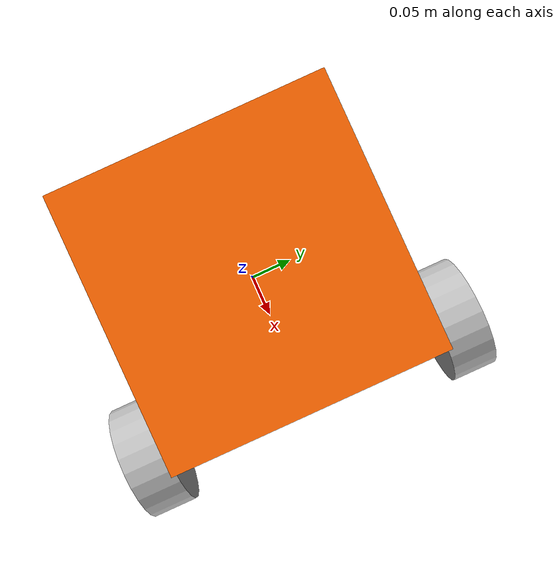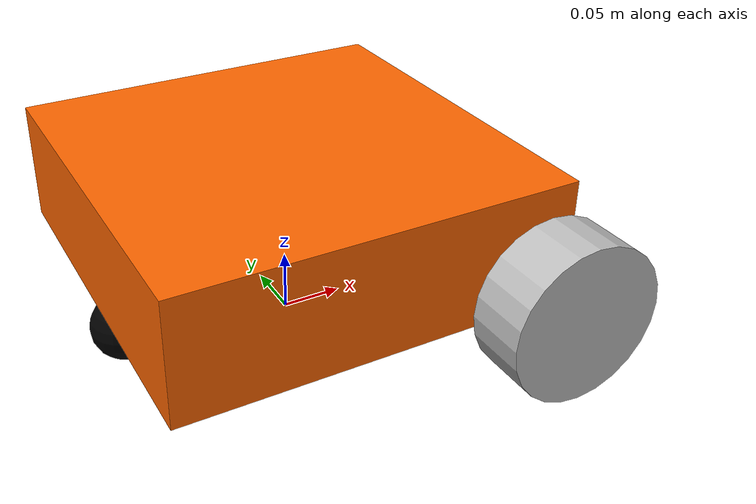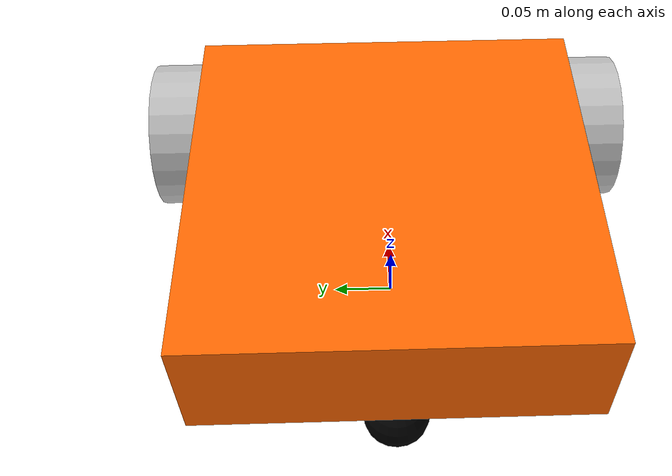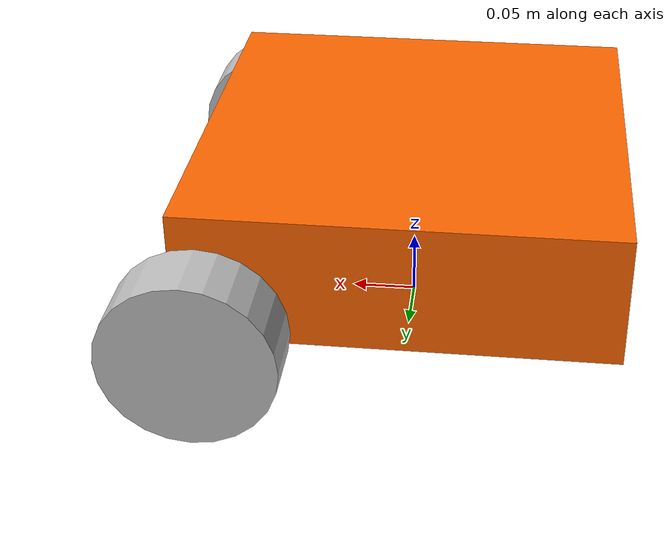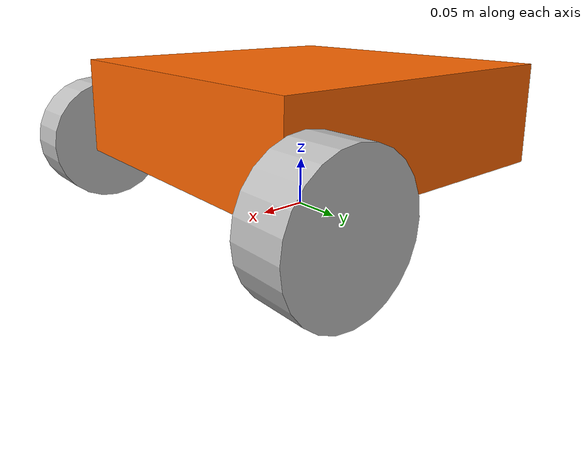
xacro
<?xml version="1.0"?>
<robot name="originbot"
    xmlns:xacro="http://www.ros.org/wiki/xacro">
    <!-- 大号机器人模型 -->
    <!-- PROPERTY LIST -->
    <xacro:property name="M_PI" value="3.1415926" />
    <!-- Original lighter chassis (was 28 kg for anti-fly; user testing feel) -->
    <!-- Heavier again: tip/fly when driving over placed cubes with 2 kg -->
    <xacro:property name="base_mass" value="18" />

    <xacro:property name="base_width" value="0.320" />
    <xacro:property name="base_length" value="0.320" />
    <xacro:property name="base_height" value="0.1" />

    <!-- 轮子 -->
    <xacro:property name="wheel_mass" value="0.5" />
    <xacro:property name="wheel_radius" value="0.065" />
    <xacro:property name="wheel_length" value="0.050" />

    <xacro:property name="wheel_joint_x" value="0.14" />
    <xacro:property name="wheel_joint_y" value="0.38" />
    <!-- 比万向轮着地点低约 2 mm，直线时驱动轮吃到重量。0.035 时轮底悬空，只有转弯压轮才快 -->
    <xacro:property name="wheel_joint_z" value="0.040" />

    <!-- 支撑轮 -->
    <xacro:property name="caster_mass" value="0.4" />
    <xacro:property name="caster_radius" value="0.0267" />
    <xacro:property name="caster_joint_x" value="0.14" />

    <material name="yellow">
        <color rgba="1 0.4 0 1" />
    </material>
    <material name="black">
        <color rgba="0 0 0 0.95" />
    </material>
    <material name="gray">
        <color rgba="0.75 0.75 0.75 1" />
    </material>

    <!-- Macro for inertia matrix -->

    <!-- 球面惯性矩阵 -->
    <xacro:macro name="sphere_inertial_matrix" params="m r">
        <inertial>
            <mass value="${m}" />
            <inertia ixx="${2*m*r*r/5}" ixy="0" ixz="0" iyy="${2*m*r*r/5}" iyz="0"
                izz="${2*m*r*r/5}" />
        </inertial>
    </xacro:macro>

    <!-- 圆柱惯性矩阵 -->
    <xacro:macro name="cylinder_inertial_matrix" params="m r h">
        <inertial>
            <mass value="${m}" />
            <inertia ixx="${m*(3*r*r+h*h)/12}" ixy="0" ixz="0" iyy="${m*(3*r*r+h*h)/12}" iyz="0"
                izz="${m*r*r/2}" />
        </inertial>
    </xacro:macro>

    <!-- 方块惯性矩阵 -->
    <xacro:macro name="box_inertial_matrix" params="m l w h">
        <inertial>
            <mass value="${m}" />
            <inertia ixx="${m*(h*h + l*l)/12}" ixy="0" ixz="0" iyy="${m*(w*w + l*l)/12}" iyz="0"
                izz="${m*(w*w + h*h)/12}" />
        </inertial>
    </xacro:macro>

    <!-- Macro for robot 轮子 -->
    <xacro:macro name="wheel" params="prefix reflect x:=${wheel_joint_x}">
        <joint name="${prefix}_wheel_joint" type="continuous">
            <origin xyz="${x} ${reflect*(base_width+wheel_length)/2} ${-wheel_joint_z}"
                rpy="0 0 0" />
            <parent link="base_link" />
            <child link="${prefix}_wheel_link" />
            <axis xyz="0 1 0" />
        </joint>

        <link name="${prefix}_wheel_link">
            <visual>
                <origin xyz="0 0 0" rpy="${M_PI/2} 0 0" />
                <geometry>
                    <cylinder radius="${wheel_radius}" length="${wheel_length}" />
                </geometry>
                <material name="gray" />
            </visual>
            <collision>
                <origin xyz="0 0 0" rpy="${M_PI/2} 0 0" />
                <geometry>
                    <cylinder radius="${wheel_radius}" length="${wheel_length}" />
                </geometry>
            </collision>
            <xacro:cylinder_inertial_matrix m="${wheel_mass}" r="${wheel_radius}"
                h="${wheel_length}" />
        </link>

    </xacro:macro>

    <!-- Macro for robot 支撑轮 -->
    <xacro:macro name="caster" params="prefix reflect">
        <joint name="${prefix}_caster_joint" type="fixed">
            <origin xyz="${reflect*caster_joint_x} 0 ${-(base_height/2 + caster_radius)}"
                rpy="0 0 0" />
            <parent link="base_link" />
            <child link="${prefix}_caster_link" />
        </joint>

        <link name="${prefix}_caster_link">
            <visual>
                <origin xyz="0 0 0" rpy="0 0 0" />
                <geometry>
                    <sphere radius="${caster_radius}" />
                </geometry>
                <material name="black" />
            </visual>
            <collision>
                <origin xyz="0 0 0" rpy="0 0 0" />
                <geometry>
                    <sphere radius="${caster_radius}" />
                </geometry>
            </collision>
            <xacro:sphere_inertial_matrix m="${caster_mass}" r="${caster_radius}" />
        </link>

    </xacro:macro>

    <link name="base_footprint">
        <visual>
            <origin xyz="0 0 0" rpy="0 0 0" />
            <geometry>
                <box size="0.001 0.001 0.001" />
            </geometry>
        </visual>
    </link>

    <joint name="base_footprint_joint" type="fixed">
        <origin xyz="0 0 ${base_height/2 + caster_radius*2}" rpy="0 0 0" />
        <parent link="base_footprint" />
        <child link="base_link" />
    </joint>

    <link name="base_link">
        <visual>
            <origin xyz=" 0 0 0" rpy="0 0 0" />
            <geometry>
                <box size="${base_length} ${base_width} ${base_height}" />
            </geometry>
            <material name="yellow" />
        </visual>
        <collision>
            <origin xyz=" 0 0 0" rpy="0 0 0" />
            <geometry>
                <box size="${base_length} ${base_width} ${base_height}" />
            </geometry>
        </collision>
        <xacro:box_inertial_matrix m="${base_mass}" l="${base_length}" w="${base_width}"
            h="${base_height}" />
    </link>

    <!-- 2 driven wheels + rear caster only (known-good Gazebo baseline) -->
    <xacro:wheel prefix="left" reflect="1" />
    <xacro:wheel prefix="right" reflect="-1" />
    <xacro:caster prefix="back" reflect="-1" />

</robot>
